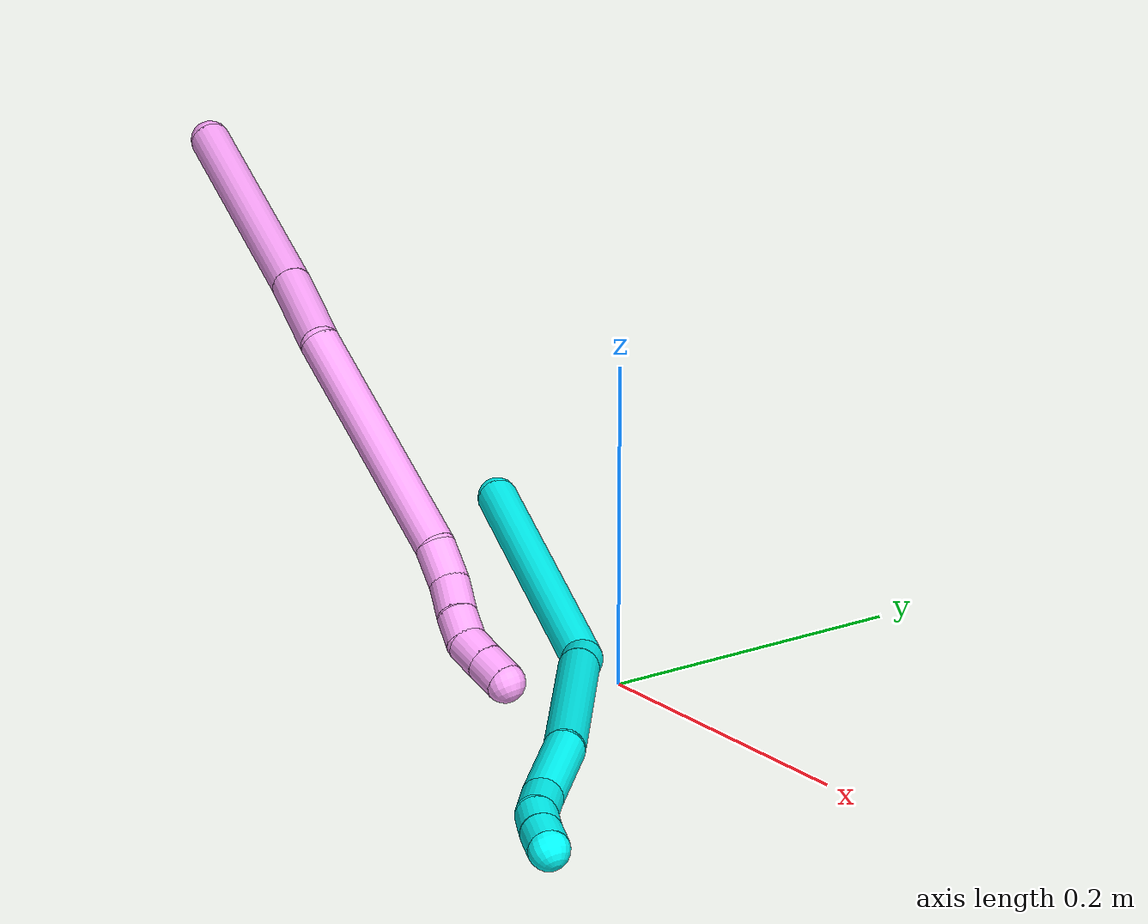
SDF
<sdf version="1.7">
 <world name="default">
  <model name="3">
   <static>0</static>
   <link name="3">
    <collision name="collision-cylinder-e_1_1_4">
     <pose>0.059411 -0.015371 -0.079628 2.95091 0.632266 2.57272</pose>
     <geometry><cylinder><radius>0.0125</radius><length>0.201062</length></cylinder></geometry>
     <surface>
      <friction><ode><mu>1.16</mu><mu2>1.16</mu2><slip1>0</slip1><slip2>0</slip2></ode></friction>
      <contact><ode><kp>1e+06</kp><kd>1</kd><max_vel>0</max_vel><min_depth>0.001</min_depth></ode></contact>
     </surface>
    </collision>
    <visual name="visual-cylinder-e_1_1_4">
     <pose>0.059411 -0.015371 -0.079628 2.95091 0.632266 2.57272</pose>
     <geometry><cylinder><radius>0.0125</radius><length>0.201062</length></cylinder></geometry>
     <material><ambient>0.003922 1 0.996078 1</ambient></material>
    </visual>
    <collision name="collision-cylinder-e_2_4_5">
     <pose>0.126942 -0.035798 -0.164574 2.38148 0.835872 1.67648</pose>
     <geometry><cylinder><radius>0.0125</radius><length>0.021889</length></cylinder></geometry>
     <surface>
      <friction><ode><mu>1.16</mu><mu2>1.16</mu2><slip1>0</slip1><slip2>0</slip2></ode></friction>
      <contact><ode><kp>1e+06</kp><kd>1</kd><max_vel>0</max_vel><min_depth>0.001</min_depth></ode></contact>
     </surface>
    </collision>
    <visual name="visual-cylinder-e_2_4_5">
     <pose>0.126942 -0.035798 -0.164574 2.38148 0.835872 1.67648</pose>
     <geometry><cylinder><radius>0.0125</radius><length>0.021889</length></cylinder></geometry>
     <material><ambient>0.003922 1 0.996078 1</ambient></material>
    </visual>
    <collision name="collision-cylinder-e_3_5_6">
     <pose>0.188272 -0.073023 -0.210986 2.47742 0.795104 1.76644</pose>
     <geometry><cylinder><radius>0.0125</radius><length>0.149062</length></cylinder></geometry>
     <surface>
      <friction><ode><mu>1.16</mu><mu2>1.16</mu2><slip1>0</slip1><slip2>0</slip2></ode></friction>
      <contact><ode><kp>1e+06</kp><kd>1</kd><max_vel>0</max_vel><min_depth>0.001</min_depth></ode></contact>
     </surface>
    </collision>
    <visual name="visual-cylinder-e_3_5_6">
     <pose>0.188272 -0.073023 -0.210986 2.47742 0.795104 1.76644</pose>
     <geometry><cylinder><radius>0.0125</radius><length>0.149062</length></cylinder></geometry>
     <material><ambient>0.003922 1 0.996078 1</ambient></material>
    </visual>
    <collision name="collision-cylinder-e_4_6_7">
     <pose>0.258194 -0.122635 -0.269803 2.36416 0.591716 1.2796</pose>
     <geometry><cylinder><radius>0.0125</radius><length>0.05992</length></cylinder></geometry>
     <surface>
      <friction><ode><mu>1.16</mu><mu2>1.16</mu2><slip1>0</slip1><slip2>0</slip2></ode></friction>
      <contact><ode><kp>1e+06</kp><kd>1</kd><max_vel>0</max_vel><min_depth>0.001</min_depth></ode></contact>
     </surface>
    </collision>
    <visual name="visual-cylinder-e_4_6_7">
     <pose>0.258194 -0.122635 -0.269803 2.36416 0.591716 1.2796</pose>
     <geometry><cylinder><radius>0.0125</radius><length>0.05992</length></cylinder></geometry>
     <material><ambient>0.003922 1 0.996078 1</ambient></material>
    </visual>
    <collision name="collision-cylinder-e_5_7_8">
     <pose>0.284411 -0.146877 -0.295197 2.41637 0.747684 1.60423</pose>
     <geometry><cylinder><radius>0.0125</radius><length>0.02796</length></cylinder></geometry>
     <surface>
      <friction><ode><mu>1.16</mu><mu2>1.16</mu2><slip1>0</slip1><slip2>0</slip2></ode></friction>
      <contact><ode><kp>1e+06</kp><kd>1</kd><max_vel>0</max_vel><min_depth>0.001</min_depth></ode></contact>
     </surface>
    </collision>
    <visual name="visual-cylinder-e_5_7_8">
     <pose>0.284411 -0.146877 -0.295197 2.41637 0.747684 1.60423</pose>
     <geometry><cylinder><radius>0.0125</radius><length>0.02796</length></cylinder></geometry>
     <material><ambient>0.003922 1 0.996078 1</ambient></material>
    </visual>
    <collision name="collision-cylinder-e_6_8_9">
     <pose>0.300252 -0.156388 -0.310168 2.78582 0.683001 2.20499</pose>
     <geometry><cylinder><radius>0.0125</radius><length>0.020077</length></cylinder></geometry>
     <surface>
      <friction><ode><mu>1.16</mu><mu2>1.16</mu2><slip1>0</slip1><slip2>0</slip2></ode></friction>
      <contact><ode><kp>1e+06</kp><kd>1</kd><max_vel>0</max_vel><min_depth>0.001</min_depth></ode></contact>
     </surface>
    </collision>
    <visual name="visual-cylinder-e_6_8_9">
     <pose>0.300252 -0.156388 -0.310168 2.78582 0.683001 2.20499</pose>
     <geometry><cylinder><radius>0.0125</radius><length>0.020077</length></cylinder></geometry>
     <material><ambient>0.003922 1 0.996078 1</ambient></material>
    </visual>
    <collision name="collision-cylinder-e_7_9_2">
     <pose>0.312836 -0.161018 -0.325054 2.89405 0.673788 2.45901</pose>
     <geometry><cylinder><radius>0.0125</radius><length>0.020029</length></cylinder></geometry>
     <surface>
      <friction><ode><mu>1.16</mu><mu2>1.16</mu2><slip1>0</slip1><slip2>0</slip2></ode></friction>
      <contact><ode><kp>1e+06</kp><kd>1</kd><max_vel>0</max_vel><min_depth>0.001</min_depth></ode></contact>
     </surface>
    </collision>
    <visual name="visual-cylinder-e_7_9_2">
     <pose>0.312836 -0.161018 -0.325054 2.89405 0.673788 2.45901</pose>
     <geometry><cylinder><radius>0.0125</radius><length>0.020029</length></cylinder></geometry>
     <material><ambient>0.003922 1 0.996078 1</ambient></material>
    </visual>
    <collision name="collision-sphere-2">
     <pose>0.319085 -0.162936 -0.332642 0 -0 0</pose>
     <geometry><sphere><radius>0.0125</radius></sphere></geometry>
     <surface>
      <friction><ode><mu>1.16</mu><mu2>1.16</mu2><slip1>0</slip1><slip2>0</slip2></ode></friction>
      <contact><ode><kp>1e+06</kp><kd>1</kd><max_vel>0</max_vel><min_depth>0.001</min_depth></ode></contact>
     </surface>
    </collision>
    <visual name="visual-sphere-2">
     <pose>0.319085 -0.162936 -0.332642 0 -0 0</pose>
     <geometry><sphere><radius>0.0125</radius></sphere></geometry>
     <material><ambient>0.003922 1 0.996078 1</ambient></material>
    </visual>
    <collision name="collision-sphere-9">
     <pose>0.306588 -0.159101 -0.317467 0 -0 0</pose>
     <geometry><sphere><radius>0.0125</radius></sphere></geometry>
     <surface>
      <friction><ode><mu>1.16</mu><mu2>1.16</mu2><slip1>0</slip1><slip2>0</slip2></ode></friction>
      <contact><ode><kp>1e+06</kp><kd>1</kd><max_vel>0</max_vel><min_depth>0.001</min_depth></ode></contact>
     </surface>
    </collision>
    <visual name="visual-sphere-9">
     <pose>0.306588 -0.159101 -0.317467 0 -0 0</pose>
     <geometry><sphere><radius>0.0125</radius></sphere></geometry>
     <material><ambient>0.003922 1 0.996078 1</ambient></material>
    </visual>
    <collision name="collision-sphere-4">
     <pose>0.118823 -0.030741 -0.159255 0 -0 0</pose>
     <geometry><sphere><radius>0.0125</radius></sphere></geometry>
     <surface>
      <friction><ode><mu>1.16</mu><mu2>1.16</mu2><slip1>0</slip1><slip2>0</slip2></ode></friction>
      <contact><ode><kp>1e+06</kp><kd>1</kd><max_vel>0</max_vel><min_depth>0.001</min_depth></ode></contact>
     </surface>
    </collision>
    <visual name="visual-sphere-4">
     <pose>0.118823 -0.030741 -0.159255 0 -0 0</pose>
     <geometry><sphere><radius>0.0125</radius></sphere></geometry>
     <material><ambient>0.003922 1 0.996078 1</ambient></material>
    </visual>
    <collision name="collision-sphere-1">
     <geometry><sphere><radius>0.0125</radius></sphere></geometry>
     <surface>
      <friction><ode><mu>1.16</mu><mu2>1.16</mu2><slip1>0</slip1><slip2>0</slip2></ode></friction>
      <contact><ode><kp>1e+06</kp><kd>1</kd><max_vel>0</max_vel><min_depth>0.001</min_depth></ode></contact>
     </surface>
    </collision>
    <visual name="visual-sphere-1">
     <geometry><sphere><radius>0.0125</radius></sphere></geometry>
     <material><ambient>0.003922 1 0.996078 1</ambient></material>
    </visual>
    <collision name="collision-sphere-8">
     <pose>0.293916 -0.153676 -0.302868 0 -0 0</pose>
     <geometry><sphere><radius>0.0125</radius></sphere></geometry>
     <surface>
      <friction><ode><mu>1.16</mu><mu2>1.16</mu2><slip1>0</slip1><slip2>0</slip2></ode></friction>
      <contact><ode><kp>1e+06</kp><kd>1</kd><max_vel>0</max_vel><min_depth>0.001</min_depth></ode></contact>
     </surface>
    </collision>
    <visual name="visual-sphere-8">
     <pose>0.293916 -0.153676 -0.302868 0 -0 0</pose>
     <geometry><sphere><radius>0.0125</radius></sphere></geometry>
     <material><ambient>0.003922 1 0.996078 1</ambient></material>
    </visual>
    <collision name="collision-sphere-5">
     <pose>0.135062 -0.040854 -0.169892 0 -0 0</pose>
     <geometry><sphere><radius>0.0125</radius></sphere></geometry>
     <surface>
      <friction><ode><mu>1.16</mu><mu2>1.16</mu2><slip1>0</slip1><slip2>0</slip2></ode></friction>
      <contact><ode><kp>1e+06</kp><kd>1</kd><max_vel>0</max_vel><min_depth>0.001</min_depth></ode></contact>
     </surface>
    </collision>
    <visual name="visual-sphere-5">
     <pose>0.135062 -0.040854 -0.169892 0 -0 0</pose>
     <geometry><sphere><radius>0.0125</radius></sphere></geometry>
     <material><ambient>0.003922 1 0.996078 1</ambient></material>
    </visual>
    <collision name="collision-sphere-6">
     <pose>0.241483 -0.105192 -0.25208 0 -0 0</pose>
     <geometry><sphere><radius>0.0125</radius></sphere></geometry>
     <surface>
      <friction><ode><mu>1.16</mu><mu2>1.16</mu2><slip1>0</slip1><slip2>0</slip2></ode></friction>
      <contact><ode><kp>1e+06</kp><kd>1</kd><max_vel>0</max_vel><min_depth>0.001</min_depth></ode></contact>
     </surface>
    </collision>
    <visual name="visual-sphere-6">
     <pose>0.241483 -0.105192 -0.25208 0 -0 0</pose>
     <geometry><sphere><radius>0.0125</radius></sphere></geometry>
     <material><ambient>0.003922 1 0.996078 1</ambient></material>
    </visual>
    <collision name="collision-sphere-7">
     <pose>0.274905 -0.140077 -0.287526 0 -0 0</pose>
     <geometry><sphere><radius>0.0125</radius></sphere></geometry>
     <surface>
      <friction><ode><mu>1.16</mu><mu2>1.16</mu2><slip1>0</slip1><slip2>0</slip2></ode></friction>
      <contact><ode><kp>1e+06</kp><kd>1</kd><max_vel>0</max_vel><min_depth>0.001</min_depth></ode></contact>
     </surface>
    </collision>
    <visual name="visual-sphere-7">
     <pose>0.274905 -0.140077 -0.287526 0 -0 0</pose>
     <geometry><sphere><radius>0.0125</radius></sphere></geometry>
     <material><ambient>0.003922 1 0.996078 1</ambient></material>
    </visual>
    <inertial>
     <pose>0.157011 -0.065158 -0.176441 0 -0 0</pose>
     <mass>0.5</mass>
     <inertia>
      <ixx>3.6e-05</ixx>
      <ixy>0</ixy>
      <ixz>0</ixz>
      <iyy>0.001281</iyy>
      <iyz>0</iyz>
      <izz>-0.000407</izz>
     </inertia>
    </inertial>
   </link>
   <pose>-0.20274 0.056624 0.04923 0.189311 -0.763369 -0.364606</pose>
  </model>
  <model name="4">
   <static>0</static>
   <link name="4">
    <collision name="collision-cylinder-e_1_1_4">
     <pose>0.056367 -0.003234 -0.059994 3.08774 0.753507 3.00567</pose>
     <geometry><cylinder><radius>0.0125</radius><length>0.164766</length></cylinder></geometry>
     <surface>
      <friction><ode><mu>1.16</mu><mu2>1.16</mu2><slip1>0</slip1><slip2>0</slip2></ode></friction>
      <contact><ode><kp>1e+06</kp><kd>1</kd><max_vel>0</max_vel><min_depth>0.001</min_depth></ode></contact>
     </surface>
    </collision>
    <visual name="visual-cylinder-e_1_1_4">
     <pose>0.056367 -0.003234 -0.059994 3.08774 0.753507 3.00567</pose>
     <geometry><cylinder><radius>0.0125</radius><length>0.164766</length></cylinder></geometry>
     <material><ambient>1 0.65098 0.996078 1</ambient></material>
    </visual>
    <collision name="collision-cylinder-e_2_4_5">
     <pose>0.133162 -0.008775 -0.14252 3.03952 0.73389 2.87735</pose>
     <geometry><cylinder><radius>0.0125</radius><length>0.061002</length></cylinder></geometry>
     <surface>
      <friction><ode><mu>1.16</mu><mu2>1.16</mu2><slip1>0</slip1><slip2>0</slip2></ode></friction>
      <contact><ode><kp>1e+06</kp><kd>1</kd><max_vel>0</max_vel><min_depth>0.001</min_depth></ode></contact>
     </surface>
    </collision>
    <visual name="visual-cylinder-e_2_4_5">
     <pose>0.133162 -0.008775 -0.14252 3.03952 0.73389 2.87735</pose>
     <geometry><cylinder><radius>0.0125</radius><length>0.061002</length></cylinder></geometry>
     <material><ambient>1 0.65098 0.996078 1</ambient></material>
    </visual>
    <collision name="collision-cylinder-e_3_5_6">
     <pose>0.187952 -0.00769 -0.239325 -3.09594 0.432912 -2.93471</pose>
     <geometry><cylinder><radius>0.0125</radius><length>0.163814</length></cylinder></geometry>
     <surface>
      <friction><ode><mu>1.16</mu><mu2>1.16</mu2><slip1>0</slip1><slip2>0</slip2></ode></friction>
      <contact><ode><kp>1e+06</kp><kd>1</kd><max_vel>0</max_vel><min_depth>0.001</min_depth></ode></contact>
     </surface>
    </collision>
    <visual name="visual-cylinder-e_3_5_6">
     <pose>0.187952 -0.00769 -0.239325 -3.09594 0.432912 -2.93471</pose>
     <geometry><cylinder><radius>0.0125</radius><length>0.163814</length></cylinder></geometry>
     <material><ambient>1 0.65098 0.996078 1</ambient></material>
    </visual>
    <collision name="collision-cylinder-e_4_6_7">
     <pose>0.225338 -0.004996 -0.326036 3.08547 0.238221 2.68083</pose>
     <geometry><cylinder><radius>0.0125</radius><length>0.025638</length></cylinder></geometry>
     <surface>
      <friction><ode><mu>1.16</mu><mu2>1.16</mu2><slip1>0</slip1><slip2>0</slip2></ode></friction>
      <contact><ode><kp>1e+06</kp><kd>1</kd><max_vel>0</max_vel><min_depth>0.001</min_depth></ode></contact>
     </surface>
    </collision>
    <visual name="visual-cylinder-e_4_6_7">
     <pose>0.225338 -0.004996 -0.326036 3.08547 0.238221 2.68083</pose>
     <geometry><cylinder><radius>0.0125</radius><length>0.025638</length></cylinder></geometry>
     <material><ambient>1 0.65098 0.996078 1</ambient></material>
    </visual>
    <collision name="collision-cylinder-e_5_7_8">
     <pose>0.234444 -0.008291 -0.348838 2.8962 0.517473 2.26957</pose>
     <geometry><cylinder><radius>0.0125</radius><length>0.024588</length></cylinder></geometry>
     <surface>
      <friction><ode><mu>1.16</mu><mu2>1.16</mu2><slip1>0</slip1><slip2>0</slip2></ode></friction>
      <contact><ode><kp>1e+06</kp><kd>1</kd><max_vel>0</max_vel><min_depth>0.001</min_depth></ode></contact>
     </surface>
    </collision>
    <visual name="visual-cylinder-e_5_7_8">
     <pose>0.234444 -0.008291 -0.348838 2.8962 0.517473 2.26957</pose>
     <geometry><cylinder><radius>0.0125</radius><length>0.024588</length></cylinder></geometry>
     <material><ambient>1 0.65098 0.996078 1</ambient></material>
    </visual>
    <collision name="collision-cylinder-e_6_8_9">
     <pose>0.245084 -0.012148 -0.36807 3.00022 0.470699 2.56736</pose>
     <geometry><cylinder><radius>0.0125</radius><length>0.0201</length></cylinder></geometry>
     <surface>
      <friction><ode><mu>1.16</mu><mu2>1.16</mu2><slip1>0</slip1><slip2>0</slip2></ode></friction>
      <contact><ode><kp>1e+06</kp><kd>1</kd><max_vel>0</max_vel><min_depth>0.001</min_depth></ode></contact>
     </surface>
    </collision>
    <visual name="visual-cylinder-e_6_8_9">
     <pose>0.245084 -0.012148 -0.36807 3.00022 0.470699 2.56736</pose>
     <geometry><cylinder><radius>0.0125</radius><length>0.0201</length></cylinder></geometry>
     <material><ambient>1 0.65098 0.996078 1</ambient></material>
    </visual>
    <collision name="collision-cylinder-e_7_9_10">
     <pose>0.255269 -0.011266 -0.384927 -2.87941 0.597352 -2.33238</pose>
     <geometry><cylinder><radius>0.0125</radius><length>0.020009</length></cylinder></geometry>
     <surface>
      <friction><ode><mu>1.16</mu><mu2>1.16</mu2><slip1>0</slip1><slip2>0</slip2></ode></friction>
      <contact><ode><kp>1e+06</kp><kd>1</kd><max_vel>0</max_vel><min_depth>0.001</min_depth></ode></contact>
     </surface>
    </collision>
    <visual name="visual-cylinder-e_7_9_10">
     <pose>0.255269 -0.011266 -0.384927 -2.87941 0.597352 -2.33238</pose>
     <geometry><cylinder><radius>0.0125</radius><length>0.020009</length></cylinder></geometry>
     <material><ambient>1 0.65098 0.996078 1</ambient></material>
    </visual>
    <collision name="collision-cylinder-e_8_10_2">
     <pose>0.266652 -0.007028 -0.400873 -2.88424 0.610454 -2.36225</pose>
     <geometry><cylinder><radius>0.0125</radius><length>0.020083</length></cylinder></geometry>
     <surface>
      <friction><ode><mu>1.16</mu><mu2>1.16</mu2><slip1>0</slip1><slip2>0</slip2></ode></friction>
      <contact><ode><kp>1e+06</kp><kd>1</kd><max_vel>0</max_vel><min_depth>0.001</min_depth></ode></contact>
     </surface>
    </collision>
    <visual name="visual-cylinder-e_8_10_2">
     <pose>0.266652 -0.007028 -0.400873 -2.88424 0.610454 -2.36225</pose>
     <geometry><cylinder><radius>0.0125</radius><length>0.020083</length></cylinder></geometry>
     <material><ambient>1 0.65098 0.996078 1</ambient></material>
    </visual>
    <collision name="collision-sphere-2">
     <pose>0.272408 -0.004934 -0.40883 0 -0 0</pose>
     <geometry><sphere><radius>0.0125</radius></sphere></geometry>
     <surface>
      <friction><ode><mu>1.16</mu><mu2>1.16</mu2><slip1>0</slip1><slip2>0</slip2></ode></friction>
      <contact><ode><kp>1e+06</kp><kd>1</kd><max_vel>0</max_vel><min_depth>0.001</min_depth></ode></contact>
     </surface>
    </collision>
    <visual name="visual-sphere-2">
     <pose>0.272408 -0.004934 -0.40883 0 -0 0</pose>
     <geometry><sphere><radius>0.0125</radius></sphere></geometry>
     <material><ambient>1 0.65098 0.996078 1</ambient></material>
    </visual>
    <collision name="collision-sphere-10">
     <pose>0.260896 -0.009122 -0.392916 0 -0 0</pose>
     <geometry><sphere><radius>0.0125</radius></sphere></geometry>
     <surface>
      <friction><ode><mu>1.16</mu><mu2>1.16</mu2><slip1>0</slip1><slip2>0</slip2></ode></friction>
      <contact><ode><kp>1e+06</kp><kd>1</kd><max_vel>0</max_vel><min_depth>0.001</min_depth></ode></contact>
     </surface>
    </collision>
    <visual name="visual-sphere-10">
     <pose>0.260896 -0.009122 -0.392916 0 -0 0</pose>
     <geometry><sphere><radius>0.0125</radius></sphere></geometry>
     <material><ambient>1 0.65098 0.996078 1</ambient></material>
    </visual>
    <collision name="collision-sphere-9">
     <pose>0.249642 -0.01341 -0.376937 0 -0 0</pose>
     <geometry><sphere><radius>0.0125</radius></sphere></geometry>
     <surface>
      <friction><ode><mu>1.16</mu><mu2>1.16</mu2><slip1>0</slip1><slip2>0</slip2></ode></friction>
      <contact><ode><kp>1e+06</kp><kd>1</kd><max_vel>0</max_vel><min_depth>0.001</min_depth></ode></contact>
     </surface>
    </collision>
    <visual name="visual-sphere-9">
     <pose>0.249642 -0.01341 -0.376937 0 -0 0</pose>
     <geometry><sphere><radius>0.0125</radius></sphere></geometry>
     <material><ambient>1 0.65098 0.996078 1</ambient></material>
    </visual>
    <collision name="collision-sphere-4">
     <pose>0.112733 -0.006468 -0.119989 0 -0 0</pose>
     <geometry><sphere><radius>0.0125</radius></sphere></geometry>
     <surface>
      <friction><ode><mu>1.16</mu><mu2>1.16</mu2><slip1>0</slip1><slip2>0</slip2></ode></friction>
      <contact><ode><kp>1e+06</kp><kd>1</kd><max_vel>0</max_vel><min_depth>0.001</min_depth></ode></contact>
     </surface>
    </collision>
    <visual name="visual-sphere-4">
     <pose>0.112733 -0.006468 -0.119989 0 -0 0</pose>
     <geometry><sphere><radius>0.0125</radius></sphere></geometry>
     <material><ambient>1 0.65098 0.996078 1</ambient></material>
    </visual>
    <collision name="collision-sphere-1">
     <geometry><sphere><radius>0.0125</radius></sphere></geometry>
     <surface>
      <friction><ode><mu>1.16</mu><mu2>1.16</mu2><slip1>0</slip1><slip2>0</slip2></ode></friction>
      <contact><ode><kp>1e+06</kp><kd>1</kd><max_vel>0</max_vel><min_depth>0.001</min_depth></ode></contact>
     </surface>
    </collision>
    <visual name="visual-sphere-1">
     <geometry><sphere><radius>0.0125</radius></sphere></geometry>
     <material><ambient>1 0.65098 0.996078 1</ambient></material>
    </visual>
    <collision name="collision-sphere-8">
     <pose>0.240526 -0.010886 -0.359202 0 -0 0</pose>
     <geometry><sphere><radius>0.0125</radius></sphere></geometry>
     <surface>
      <friction><ode><mu>1.16</mu><mu2>1.16</mu2><slip1>0</slip1><slip2>0</slip2></ode></friction>
      <contact><ode><kp>1e+06</kp><kd>1</kd><max_vel>0</max_vel><min_depth>0.001</min_depth></ode></contact>
     </surface>
    </collision>
    <visual name="visual-sphere-8">
     <pose>0.240526 -0.010886 -0.359202 0 -0 0</pose>
     <geometry><sphere><radius>0.0125</radius></sphere></geometry>
     <material><ambient>1 0.65098 0.996078 1</ambient></material>
    </visual>
    <collision name="collision-sphere-5">
     <pose>0.15359 -0.011083 -0.165052 0 -0 0</pose>
     <geometry><sphere><radius>0.0125</radius></sphere></geometry>
     <surface>
      <friction><ode><mu>1.16</mu><mu2>1.16</mu2><slip1>0</slip1><slip2>0</slip2></ode></friction>
      <contact><ode><kp>1e+06</kp><kd>1</kd><max_vel>0</max_vel><min_depth>0.001</min_depth></ode></contact>
     </surface>
    </collision>
    <visual name="visual-sphere-5">
     <pose>0.15359 -0.011083 -0.165052 0 -0 0</pose>
     <geometry><sphere><radius>0.0125</radius></sphere></geometry>
     <material><ambient>1 0.65098 0.996078 1</ambient></material>
    </visual>
    <collision name="collision-sphere-6">
     <pose>0.222313 -0.004297 -0.313599 0 -0 0</pose>
     <geometry><sphere><radius>0.0125</radius></sphere></geometry>
     <surface>
      <friction><ode><mu>1.16</mu><mu2>1.16</mu2><slip1>0</slip1><slip2>0</slip2></ode></friction>
      <contact><ode><kp>1e+06</kp><kd>1</kd><max_vel>0</max_vel><min_depth>0.001</min_depth></ode></contact>
     </surface>
    </collision>
    <visual name="visual-sphere-6">
     <pose>0.222313 -0.004297 -0.313599 0 -0 0</pose>
     <geometry><sphere><radius>0.0125</radius></sphere></geometry>
     <material><ambient>1 0.65098 0.996078 1</ambient></material>
    </visual>
    <collision name="collision-sphere-7">
     <pose>0.228363 -0.005695 -0.338474 0 -0 0</pose>
     <geometry><sphere><radius>0.0125</radius></sphere></geometry>
     <surface>
      <friction><ode><mu>1.16</mu><mu2>1.16</mu2><slip1>0</slip1><slip2>0</slip2></ode></friction>
      <contact><ode><kp>1e+06</kp><kd>1</kd><max_vel>0</max_vel><min_depth>0.001</min_depth></ode></contact>
     </surface>
    </collision>
    <visual name="visual-sphere-7">
     <pose>0.228363 -0.005695 -0.338474 0 -0 0</pose>
     <geometry><sphere><radius>0.0125</radius></sphere></geometry>
     <material><ambient>1 0.65098 0.996078 1</ambient></material>
    </visual>
    <inertial>
     <pose>0.15026 -0.006541 -0.195742 0 -0 0</pose>
     <mass>0.5</mass>
     <inertia>
      <ixx>-0.000632</ixx>
      <ixy>0</ixy>
      <ixz>0</ixz>
      <iyy>0.000744</iyy>
      <iyz>0</iyz>
      <izz>-0.000465</izz>
     </inertia>
    </inertial>
   </link>
   <pose>-0.451495 0.01076 0.229094 0.298833 -0.49051 -0.451637</pose>
  </model>
 </world>
</sdf>
